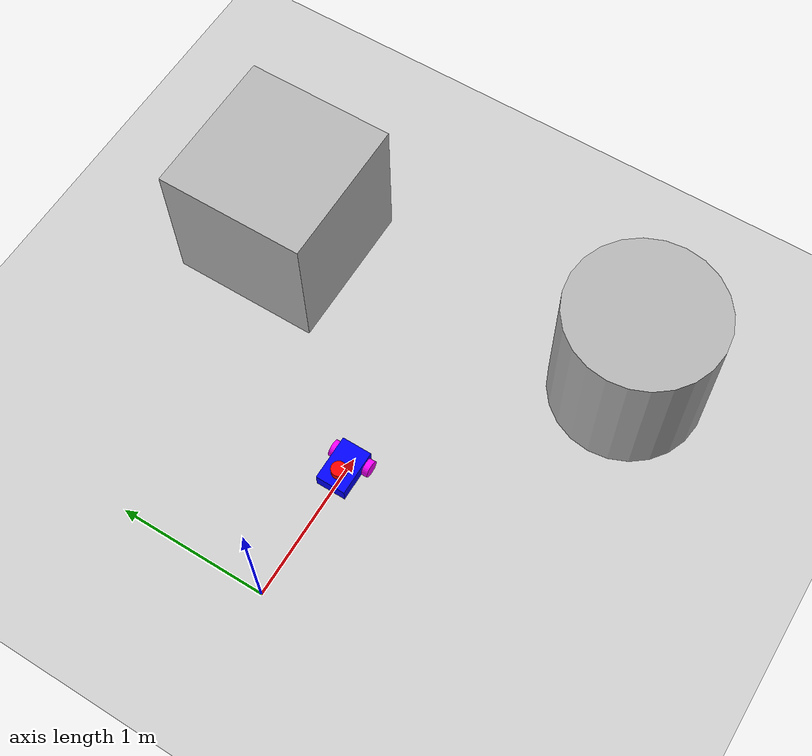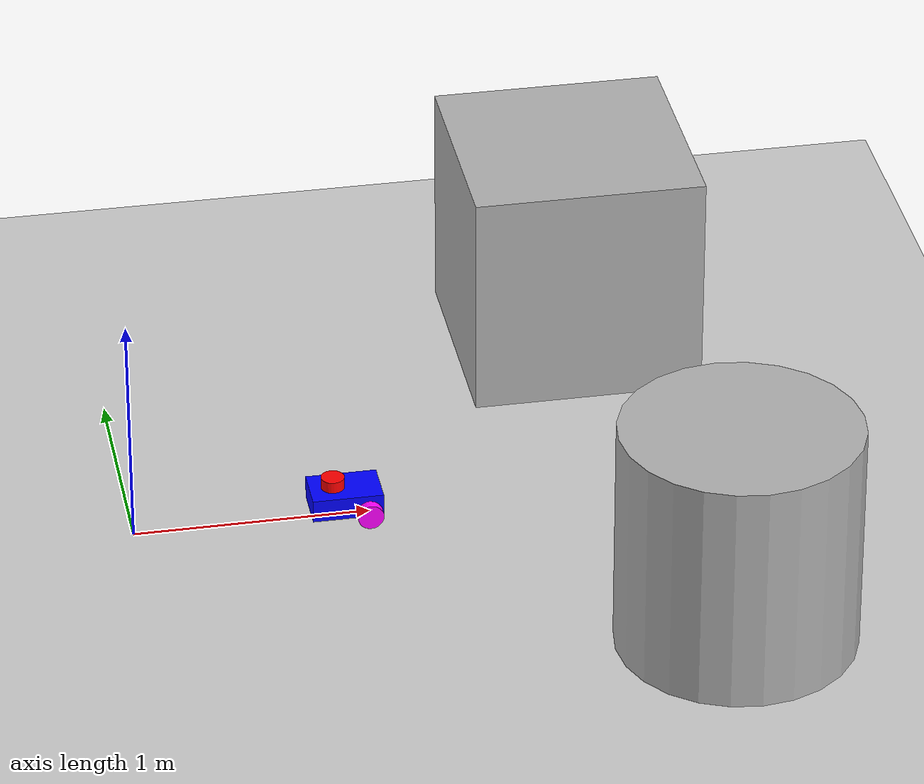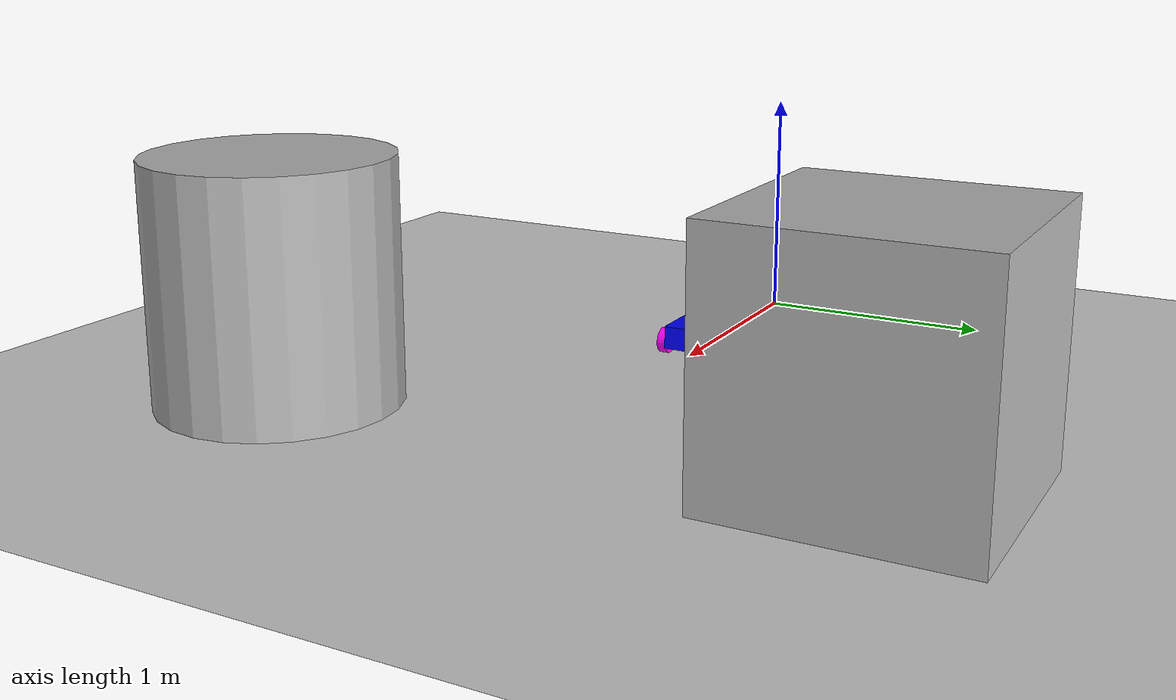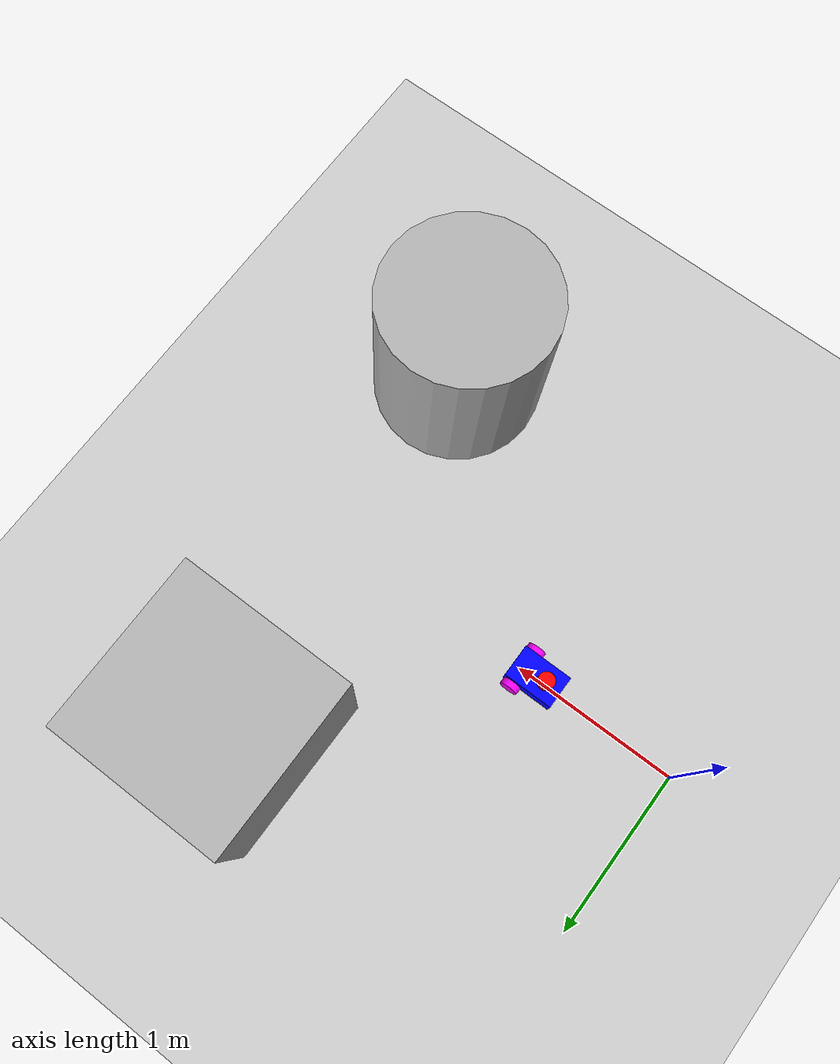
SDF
<sdf version='1.10'>
  <world name='empty'>
    <physics name='1ms' type='ode'>
      <max_step_size>0.001</max_step_size>
      <real_time_factor>1</real_time_factor>
      <real_time_update_rate>1000</real_time_update_rate>
    </physics>
    <plugin name='gz::sim::systems::Physics' filename='gz-sim-physics-system'/>
    <plugin name='gz::sim::systems::UserCommands' filename='gz-sim-user-commands-system'/>
    <plugin name='gz::sim::systems::SceneBroadcaster' filename='gz-sim-scene-broadcaster-system'/>
    <plugin name='gz::sim::systems::Contact' filename='gz-sim-contact-system'/>
    <plugin name='gz::sim::systems::Sensors' filename='gz-sim-sensors-system'>
      <render_engine>ogre2</render_engine>
    </plugin>
    <gravity>0 0 -9.8000000000000007</gravity>
    <magnetic_field>5.5644999999999998e-06 2.2875799999999999e-05 -4.2388400000000002e-05</magnetic_field>
    <atmosphere type='adiabatic'/>
    <scene>
      <ambient>0.400000006 0.400000006 0.400000006 1</ambient>
      <background>0.699999988 0.699999988 0.699999988 1</background>
      <shadows>true</shadows>
    </scene>
    <model name='ground_plane'>
      <static>true</static>
      <link name='link'>
        <collision name='collision'>
          <geometry>
            <plane>
              <normal>0 0 1</normal>
              <size>100 100</size>
            </plane>
          </geometry>
          <surface>
            <friction>
              <ode/>
            </friction>
            <bounce/>
            <contact/>
          </surface>
        </collision>
        <visual name='visual'>
          <geometry>
            <plane>
              <normal>0 0 1</normal>
              <size>100 100</size>
            </plane>
          </geometry>
          <material>
            <ambient>0.800000012 0.800000012 0.800000012 1</ambient>
            <diffuse>0.800000012 0.800000012 0.800000012 1</diffuse>
            <specular>0.800000012 0.800000012 0.800000012 1</specular>
          </material>
        </visual>
        <pose>0 0 0 0 0 0</pose>
        <inertial>
          <pose>0 0 0 0 0 0</pose>
          <mass>1</mass>
          <inertia>
            <ixx>1</ixx>
            <ixy>0</ixy>
            <ixz>0</ixz>
            <iyy>1</iyy>
            <iyz>0</iyz>
            <izz>1</izz>
          </inertia>
        </inertial>
        <enable_wind>false</enable_wind>
      </link>
      <pose>0 0 0 0 0 0</pose>
      <self_collide>false</self_collide>
    </model>
    <model name='wally_boxxy'>
      <link name='base_link'>
        <inertial>
          <pose>0.0028846153846154299 0 0.085000000000000034 0 0 0</pose>
          <mass>5.1999999999999993</mass>
          <inertia>
            <ixx>0.02146566666666665</ixx>
            <ixy>0</ixy>
            <ixz>0.0002500000000000154</ixz>
            <iyy>0.043505730769230727</iyy>
            <iyz>0</iyz>
            <izz>0.055547397435897379</izz>
          </inertia>
        </inertial>
        <collision name='base_link_fixed_joint_lump__chassis_collision'>
          <pose>0 0 0.085000000000000006 0 0 0</pose>
          <geometry>
            <box>
              <size>0.29999999999999999 0.20000000000000001 0.10000000000000001</size>
            </box>
          </geometry>
          <surface>
            <friction>
              <ode/>
            </friction>
            <bounce/>
            <contact/>
          </surface>
        </collision>
        <collision name='base_link_fixed_joint_lump__caster_wheel_collision_1'>
          <pose>0.10000000000000001 0 0.035000000000000003 0 0 0</pose>
          <geometry>
            <sphere>
              <radius>0.035000000000000003</radius>
            </sphere>
          </geometry>
          <surface>
            <friction>
              <ode/>
            </friction>
            <bounce/>
            <contact/>
          </surface>
        </collision>
        <collision name='base_link_fixed_joint_lump__laser_frame_collision_2'>
          <pose>0.050000000000000017 0 0.13500000000000001 0 0 0</pose>
          <geometry>
            <cylinder>
              <length>0.050000000000000003</length>
              <radius>0.050000000000000003</radius>
            </cylinder>
          </geometry>
          <surface>
            <contact>
              <ode/>
            </contact>
            <friction>
              <ode/>
            </friction>
            <bounce/>
          </surface>
        </collision>
        <visual name='base_link_fixed_joint_lump__chassis_visual'>
          <pose>0 0 0.085000000000000006 0 0 0</pose>
          <geometry>
            <box>
              <size>0.29999999999999999 0.20000000000000001 0.10000000000000001</size>
            </box>
          </geometry>
          <material>
            <diffuse>0 0 1 1</diffuse>
            <ambient>0 0 1 1</ambient>
          </material>
        </visual>
        <visual name='base_link_fixed_joint_lump__caster_wheel_visual_1'>
          <pose>0.10000000000000001 0 0.035000000000000003 0 0 0</pose>
          <geometry>
            <sphere>
              <radius>0.035000000000000003</radius>
            </sphere>
          </geometry>
          <material>
            <diffuse>1 0.625 0 1</diffuse>
            <ambient>1 0.625 0 1</ambient>
          </material>
        </visual>
        <visual name='base_link_fixed_joint_lump__laser_frame_visual_2'>
          <pose>0.050000000000000017 0 0.16 0 0 0</pose>
          <geometry>
            <cylinder>
              <length>0.050000000000000003</length>
              <radius>0.050000000000000003</radius>
            </cylinder>
          </geometry>
          <material>
            <diffuse>1 0 0 1</diffuse>
            <ambient>1 0 0 1</ambient>
          </material>
        </visual>
        <sensor name='laser' type='ray'>
          <update_rate>10</update_rate>
          <visualize>true</visualize>
          <always_on>true</always_on>
          <topic>/model/wally_boxxy/scan</topic>
          <ray>
            <scan>
              <horizontal>
                <samples>360</samples>
                <resolution>1</resolution>
                <min_angle>-3.1415899999999999</min_angle>
                <max_angle>3.1415899999999999</max_angle>
              </horizontal>
            </scan>
            <range>
              <min>0.29999999999999999</min>
              <max>12</max>
              <resolution>0.01</resolution>
            </range>
            <noise>
              <type>gaussian</type>
              <mean>0</mean>
              <stddev>0.01</stddev>
            </noise>
          </ray>
          <pose>0.050000000000000003 0 0.13500000000000001 0 0 0</pose>
        </sensor>
        <pose>0 0 0 0 0 0</pose>
        <enable_wind>false</enable_wind>
      </link>
      <joint name='left_wheel_joint' type='revolute'>
        <pose>-1.3877787807814457e-17 -2.7755575615628914e-17 -1.3877787807814457e-17 0 0 5.5511151231257827e-17</pose>
        <parent>base_link</parent>
        <child>left_wheel</child>
        <axis>
          <xyz>0 0 1</xyz>
          <limit>
            <lower>-inf</lower>
            <upper>inf</upper>
            <effort>inf</effort>
            <velocity>inf</velocity>
            <stiffness>100000000</stiffness>
            <dissipation>1</dissipation>
          </limit>
          <dynamics>
            <spring_reference>0</spring_reference>
            <spring_stiffness>0</spring_stiffness>
            <damping>0</damping>
            <friction>0</friction>
          </dynamics>
        </axis>
      </joint>
      <link name='left_wheel'>
        <pose>-0.090000000000001412 0.12000000000000031 0.054999999999999986 1.5707963267948948 -1.0496642257943662 -3.1415926535897905</pose>
        <inertial>
          <pose>0 0 0 0 0 0</pose>
          <mass>0.10000000000000001</mass>
          <inertia>
            <ixx>8.8958333333333332e-05</ixx>
            <ixy>0</ixy>
            <ixz>0</ixz>
            <iyy>8.8958333333333332e-05</iyy>
            <iyz>0</iyz>
            <izz>0.00015124999999999999</izz>
          </inertia>
        </inertial>
        <collision name='left_wheel_collision'>
          <pose>0 0 0 0 0 0</pose>
          <geometry>
            <cylinder>
              <length>0.040000000000000001</length>
              <radius>0.055</radius>
            </cylinder>
          </geometry>
          <surface>
            <friction>
              <ode/>
            </friction>
            <bounce/>
            <contact/>
          </surface>
        </collision>
        <visual name='left_wheel_visual'>
          <pose>0 0 0 0 0 0</pose>
          <geometry>
            <cylinder>
              <length>0.040000000000000001</length>
              <radius>0.055</radius>
            </cylinder>
          </geometry>
          <material>
            <diffuse>1 0 1 1</diffuse>
            <ambient>1 0 1 1</ambient>
          </material>
        </visual>
        <enable_wind>false</enable_wind>
      </link>
      <joint name='right_wheel_joint' type='revolute'>
        <pose>-1.3877787807814457e-17 1.3877787807814457e-17 5.5511151231257827e-17 0 0 0</pose>
        <parent>base_link</parent>
        <child>right_wheel</child>
        <axis>
          <xyz>0 0 1</xyz>
          <limit>
            <lower>-inf</lower>
            <upper>inf</upper>
            <effort>inf</effort>
            <velocity>inf</velocity>
            <stiffness>100000000</stiffness>
            <dissipation>1</dissipation>
          </limit>
          <dynamics>
            <spring_reference>0</spring_reference>
            <spring_stiffness>0</spring_stiffness>
            <damping>0</damping>
            <friction>0</friction>
          </dynamics>
        </axis>
      </joint>
      <link name='right_wheel'>
        <pose>-0.090000000000001301 -0.12000000000000019 0.055000000000000028 1.5707963267948959 0.79060749753726711 4.735007749201065e-16</pose>
        <inertial>
          <pose>0 0 0 0 0 0</pose>
          <mass>0.10000000000000001</mass>
          <inertia>
            <ixx>8.8958333333333332e-05</ixx>
            <ixy>0</ixy>
            <ixz>0</ixz>
            <iyy>8.8958333333333332e-05</iyy>
            <iyz>0</iyz>
            <izz>0.00015124999999999999</izz>
          </inertia>
        </inertial>
        <collision name='right_wheel_collision'>
          <pose>0 0 0 0 0 0</pose>
          <geometry>
            <cylinder>
              <length>0.040000000000000001</length>
              <radius>0.055</radius>
            </cylinder>
          </geometry>
          <surface>
            <friction>
              <ode/>
            </friction>
            <bounce/>
            <contact/>
          </surface>
        </collision>
        <visual name='right_wheel_visual'>
          <pose>0 0 0 0 0 0</pose>
          <geometry>
            <cylinder>
              <length>0.040000000000000001</length>
              <radius>0.055</radius>
            </cylinder>
          </geometry>
          <material>
            <diffuse>1 0 1 1</diffuse>
            <ambient>1 0 1 1</ambient>
          </material>
        </visual>
        <enable_wind>false</enable_wind>
      </link>
      <plugin name='gz::sim::systems::DiffDrive' filename='gz-sim-diff-drive-system'>
        <left_joint>left_wheel_joint</left_joint>
        <right_joint>right_wheel_joint</right_joint>
        <wheel_separation>0.34</wheel_separation>
        <wheel_radius>0.055</wheel_radius>
        <frame_id>odom</frame_id>
        <child_frame_id>base_link</child_frame_id>
      </plugin>
      <plugin name='gz::sim::systems::JointStatePublisher' filename='gz-sim-joint-state-publisher-system'>
        <joint_name>left_wheel_joint</joint_name>
        <joint_name>right_wheel_joint</joint_name>
      </plugin>
      <frame name='caster_wheel_joint' attached_to='chassis'>
        <pose>0.25 0 0 0 0 0</pose>
      </frame>
      <frame name='caster_wheel' attached_to='caster_wheel_joint'>
        <pose>0 0 0 0 0 0</pose>
      </frame>
      <frame name='laser_joint' attached_to='chassis'>
        <pose>0.20000000000000001 0 0.10000000000000001 0 0 0</pose>
      </frame>
      <frame name='laser_frame' attached_to='laser_joint'>
        <pose>0 0 0 0 0 0</pose>
      </frame>
      <frame name='base_link_joint' attached_to='base_link'>
        <pose>-0.14999999999999999 0 0.035000000000000003 0 0 0</pose>
      </frame>
      <frame name='chassis' attached_to='base_link_joint'>
        <pose>0 0 0 0 0 0</pose>
      </frame>
      <pose>0.89387686155333856 0.00042773763687483415 -8.2133501062051347e-09 -2.101657976989044e-15 1.9559680688652171e-08 3.141540362136706</pose>
      <static>false</static>
      <self_collide>false</self_collide>
    </model>
    <model name='box'>
      <pose>2.0866386125072154 1.2225002093722601 0.49999999990199806 6.2287739151293738e-22 9.3279666454713669e-22 -3.6315533669320137e-22</pose>
      <link name='box_link'>
        <inertial>
          <inertia>
            <ixx>0.16666</ixx>
            <ixy>0</ixy>
            <ixz>0</ixz>
            <iyy>0.16666</iyy>
            <iyz>0</iyz>
            <izz>0.16666</izz>
          </inertia>
          <mass>1</mass>
          <pose>0 0 0 0 0 0</pose>
        </inertial>
        <collision name='box_collision'>
          <geometry>
            <box>
              <size>1 1 1</size>
            </box>
          </geometry>
          <surface>
            <friction>
              <ode/>
            </friction>
            <bounce/>
            <contact/>
          </surface>
        </collision>
        <visual name='box_visual'>
          <geometry>
            <box>
              <size>1 1 1</size>
            </box>
          </geometry>
          <material>
            <ambient>0.300000012 0.300000012 0.300000012 1</ambient>
            <diffuse>0.699999988 0.699999988 0.699999988 1</diffuse>
            <specular>1 1 1 1</specular>
          </material>
        </visual>
        <pose>0 0 0 0 0 0</pose>
        <enable_wind>false</enable_wind>
      </link>
      <static>false</static>
      <self_collide>false</self_collide>
    </model>
    <model name='cylinder'>
      <pose>2.3058438367631773 -1.194276302730291 0.49999942638036005 -5.2622132570414884e-20 4.6790505153527057e-19 5.2238220053243102e-21</pose>
      <link name='cylinder_link'>
        <inertial>
          <inertia>
            <ixx>0.14580000000000001</ixx>
            <ixy>0</ixy>
            <ixz>0</ixz>
            <iyy>0.14580000000000001</iyy>
            <iyz>0</iyz>
            <izz>0.125</izz>
          </inertia>
          <mass>1</mass>
          <pose>0 0 0 0 0 0</pose>
        </inertial>
        <collision name='cylinder_collision'>
          <geometry>
            <cylinder>
              <radius>0.5</radius>
              <length>1</length>
            </cylinder>
          </geometry>
          <surface>
            <friction>
              <ode/>
            </friction>
            <bounce/>
            <contact/>
          </surface>
        </collision>
        <visual name='cylinder_visual'>
          <geometry>
            <cylinder>
              <radius>0.5</radius>
              <length>1</length>
            </cylinder>
          </geometry>
          <material>
            <ambient>0.300000012 0.300000012 0.300000012 1</ambient>
            <diffuse>0.699999988 0.699999988 0.699999988 1</diffuse>
            <specular>1 1 1 1</specular>
          </material>
        </visual>
        <pose>0 0 0 0 0 0</pose>
        <enable_wind>false</enable_wind>
      </link>
      <static>false</static>
      <self_collide>false</self_collide>
    </model>
    <light name='sun' type='directional'>
      <pose>0 0 10 0 0 0</pose>
      <cast_shadows>true</cast_shadows>
      <intensity>1</intensity>
      <direction>-0.5 0.10000000000000001 -0.90000000000000002</direction>
      <diffuse>0.800000012 0.800000012 0.800000012 1</diffuse>
      <specular>0.200000003 0.200000003 0.200000003 1</specular>
      <attenuation>
        <range>1000</range>
        <linear>0.0099999997764825821</linear>
        <constant>0.89999997615814209</constant>
        <quadratic>0.0010000000474974513</quadratic>
      </attenuation>
      <spot>
        <inner_angle>0</inner_angle>
        <outer_angle>0</outer_angle>
        <falloff>0</falloff>
      </spot>
    </light>
  </world>
</sdf>
